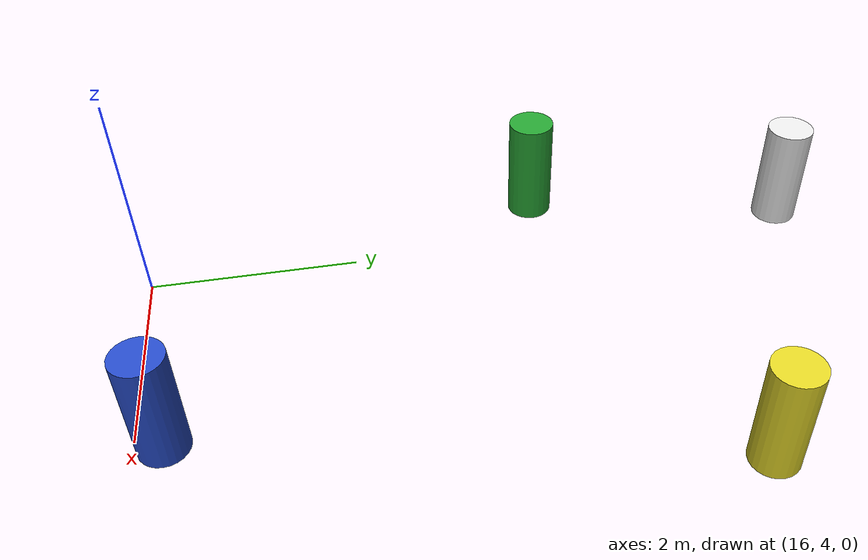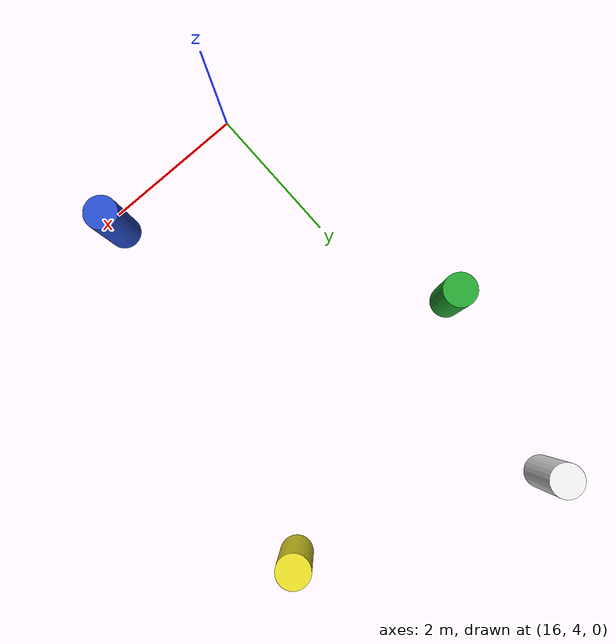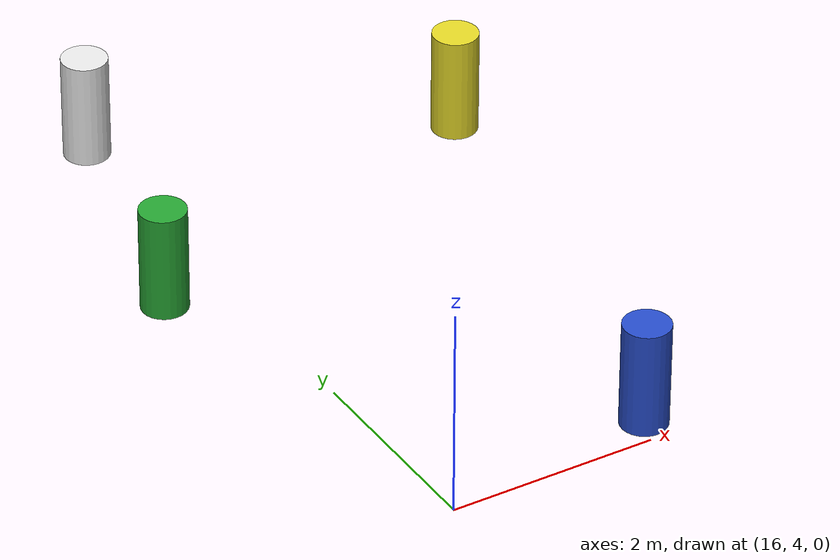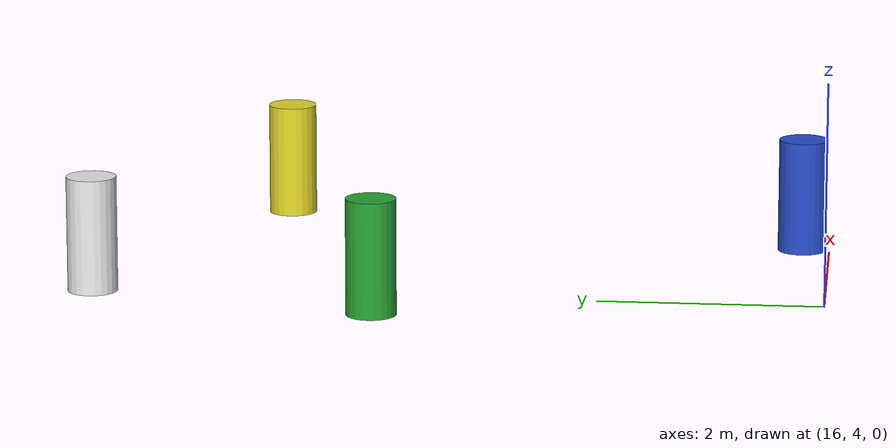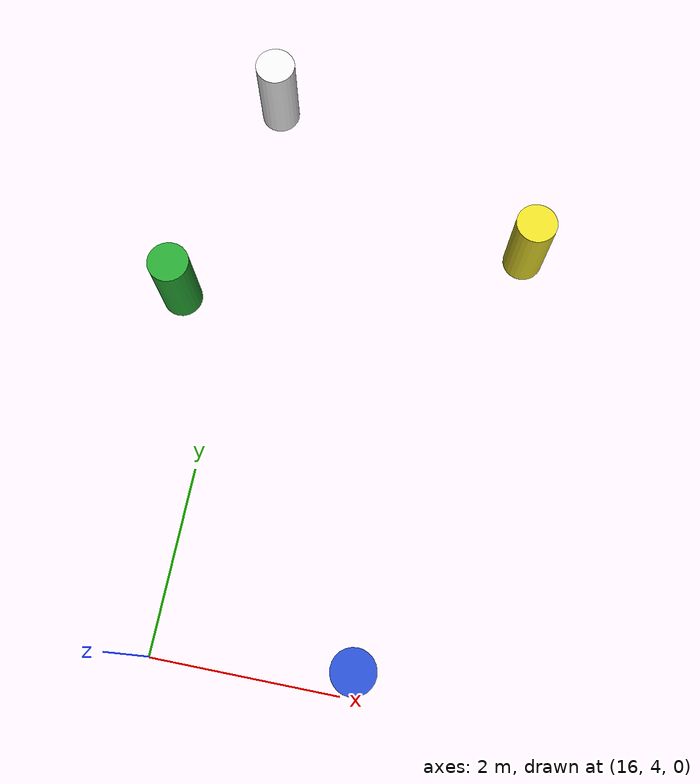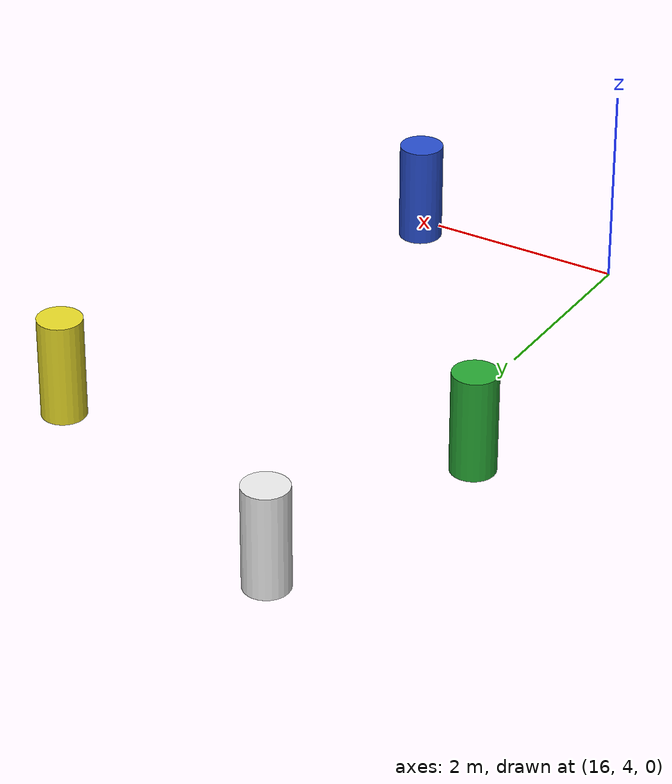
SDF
<sdf version="1.7">
 <world name="IGVC AutoNav">
  <model name="barrel_31">
   <link name="link">
    <inertial>
     <mass>1</mass>
     <inertia><ixx>0.145833</ixx><ixy>0</ixy><ixz>0</ixz><iyy>0.145833</iyy><iyz>0</iyz><izz>0.125</izz></inertia>
    </inertial>
    <visual name="visual">
     <geometry><cylinder><radius>0.222916</radius><length>1.03567</length></cylinder></geometry>
     <material>
      <script><name>Gazebo/Green</name><uri>file://media/materials/scripts/gazebo.material</uri></script>
      <shader type="pixel"/>
     </material>
    </visual>
    <collision name="collision">
     <geometry><cylinder><radius>0.222916</radius><length>1.03567</length></cylinder></geometry>
     <surface>
      <friction>
       <ode><mu>1</mu><mu2>1</mu2><fdir1>0 0 0</fdir1><slip1>0</slip1><slip2>0</slip2></ode>
       <torsional>
        <coefficient>1</coefficient>
        <patch_radius>0</patch_radius>
        <surface_radius>0</surface_radius>
        <use_patch_radius>1</use_patch_radius>
        <ode><slip>0</slip></ode>
       </torsional>
      </friction>
      <bounce><restitution_coefficient>0</restitution_coefficient><threshold>1e+06</threshold></bounce>
      <contact>
       <collide_without_contact>0</collide_without_contact>
       <collide_without_contact_bitmask>1</collide_without_contact_bitmask>
       <collide_bitmask>1</collide_bitmask>
       <ode>
        <soft_cfm>0</soft_cfm>
        <soft_erp>0.2</soft_erp>
        <kp>1e+13</kp>
        <kd>1</kd>
        <max_vel>0.01</max_vel>
        <min_depth>0</min_depth>
       </ode>
       <bullet>
        <split_impulse>1</split_impulse>
        <split_impulse_penetration_threshold>-0.01</split_impulse_penetration_threshold>
        <soft_cfm>0</soft_cfm>
        <soft_erp>0.2</soft_erp>
        <kp>1e+13</kp>
        <kd>1</kd>
       </bullet>
      </contact>
     </surface>
    </collision>
   </link>
   <static>0</static>
   <pose>15.379 7.92408 0.517834 1e-06 1e-06 0.000317</pose>
  </model>
  <model name="barrel_32">
   <link name="link">
    <inertial>
     <mass>1</mass>
     <inertia><ixx>0.145833</ixx><ixy>0</ixy><ixz>0</ixz><iyy>0.145833</iyy><iyz>0</iyz><izz>0.125</izz></inertia>
    </inertial>
    <visual name="visual">
     <geometry><cylinder><radius>0.222916</radius><length>1.03567</length></cylinder></geometry>
     <material>
      <script><name>Gazebo/Yellow</name><uri>file://media/materials/scripts/gazebo.material</uri></script>
      <shader type="pixel"/>
     </material>
    </visual>
    <collision name="collision">
     <geometry><cylinder><radius>0.222916</radius><length>1.03567</length></cylinder></geometry>
     <surface>
      <friction>
       <ode><mu>1</mu><mu2>1</mu2><fdir1>0 0 0</fdir1><slip1>0</slip1><slip2>0</slip2></ode>
       <torsional>
        <coefficient>1</coefficient>
        <patch_radius>0</patch_radius>
        <surface_radius>0</surface_radius>
        <use_patch_radius>1</use_patch_radius>
        <ode><slip>0</slip></ode>
       </torsional>
      </friction>
      <bounce><restitution_coefficient>0</restitution_coefficient><threshold>1e+06</threshold></bounce>
      <contact>
       <collide_without_contact>0</collide_without_contact>
       <collide_without_contact_bitmask>1</collide_without_contact_bitmask>
       <collide_bitmask>1</collide_bitmask>
       <ode>
        <soft_cfm>0</soft_cfm>
        <soft_erp>0.2</soft_erp>
        <kp>1e+13</kp>
        <kd>1</kd>
        <max_vel>0.01</max_vel>
        <min_depth>0</min_depth>
       </ode>
       <bullet>
        <split_impulse>1</split_impulse>
        <split_impulse_penetration_threshold>-0.01</split_impulse_penetration_threshold>
        <soft_cfm>0</soft_cfm>
        <soft_erp>0.2</soft_erp>
        <kp>1e+13</kp>
        <kd>1</kd>
       </bullet>
      </contact>
     </surface>
    </collision>
   </link>
   <static>0</static>
   <pose>19.1435 9.11208 0.517834 1e-06 1e-06 0.000302</pose>
  </model>
  <model name="barrel_34">
   <link name="link">
    <inertial>
     <mass>1</mass>
     <inertia><ixx>0.145833</ixx><ixy>0</ixy><ixz>0</ixz><iyy>0.145833</iyy><iyz>0</iyz><izz>0.125</izz></inertia>
    </inertial>
    <visual name="visual">
     <geometry><cylinder><radius>0.222916</radius><length>1.03567</length></cylinder></geometry>
     <material>
      <script><name>Gazebo/Blue</name><uri>file://media/materials/scripts/gazebo.material</uri></script>
      <shader type="pixel"/>
     </material>
    </visual>
    <collision name="collision">
     <geometry><cylinder><radius>0.222916</radius><length>1.03567</length></cylinder></geometry>
     <surface>
      <friction>
       <ode><mu>1</mu><mu2>1</mu2><fdir1>0 0 0</fdir1><slip1>0</slip1><slip2>0</slip2></ode>
       <torsional>
        <coefficient>1</coefficient>
        <patch_radius>0</patch_radius>
        <surface_radius>0</surface_radius>
        <use_patch_radius>1</use_patch_radius>
        <ode><slip>0</slip></ode>
       </torsional>
      </friction>
      <bounce><restitution_coefficient>0</restitution_coefficient><threshold>1e+06</threshold></bounce>
      <contact>
       <collide_without_contact>0</collide_without_contact>
       <collide_without_contact_bitmask>1</collide_without_contact_bitmask>
       <collide_bitmask>1</collide_bitmask>
       <ode>
        <soft_cfm>0</soft_cfm>
        <soft_erp>0.2</soft_erp>
        <kp>1e+13</kp>
        <kd>1</kd>
        <max_vel>0.01</max_vel>
        <min_depth>0</min_depth>
       </ode>
       <bullet>
        <split_impulse>1</split_impulse>
        <split_impulse_penetration_threshold>-0.01</split_impulse_penetration_threshold>
        <soft_cfm>0</soft_cfm>
        <soft_erp>0.2</soft_erp>
        <kp>1e+13</kp>
        <kd>1</kd>
       </bullet>
      </contact>
     </surface>
    </collision>
   </link>
   <static>0</static>
   <pose>18.0902 4.25222 0.517834 1e-06 1e-06 0.000273</pose>
  </model>
  <model name="barrel_38">
   <link name="link">
    <inertial>
     <mass>1</mass>
     <inertia><ixx>0.145833</ixx><ixy>0</ixy><ixz>0</ixz><iyy>0.145833</iyy><iyz>0</iyz><izz>0.125</izz></inertia>
    </inertial>
    <visual name="visual">
     <geometry><cylinder><radius>0.222916</radius><length>1.03567</length></cylinder></geometry>
     <material>
      <script><name>Gazebo/White</name><uri>file://media/materials/scripts/gazebo.material</uri></script>
      <shader type="pixel"/>
     </material>
    </visual>
    <collision name="collision">
     <geometry><cylinder><radius>0.222916</radius><length>1.03567</length></cylinder></geometry>
     <surface>
      <friction>
       <ode><mu>1</mu><mu2>1</mu2><fdir1>0 0 0</fdir1><slip1>0</slip1><slip2>0</slip2></ode>
       <torsional>
        <coefficient>1</coefficient>
        <patch_radius>0</patch_radius>
        <surface_radius>0</surface_radius>
        <use_patch_radius>1</use_patch_radius>
        <ode><slip>0</slip></ode>
       </torsional>
      </friction>
      <bounce><restitution_coefficient>0</restitution_coefficient><threshold>1e+06</threshold></bounce>
      <contact>
       <collide_without_contact>0</collide_without_contact>
       <collide_without_contact_bitmask>1</collide_without_contact_bitmask>
       <collide_bitmask>1</collide_bitmask>
       <ode>
        <soft_cfm>0</soft_cfm>
        <soft_erp>0.2</soft_erp>
        <kp>1e+13</kp>
        <kd>1</kd>
        <max_vel>0.01</max_vel>
        <min_depth>0</min_depth>
       </ode>
       <bullet>
        <split_impulse>1</split_impulse>
        <split_impulse_penetration_threshold>-0.01</split_impulse_penetration_threshold>
        <soft_cfm>0</soft_cfm>
        <soft_erp>0.2</soft_erp>
        <kp>1e+13</kp>
        <kd>1</kd>
       </bullet>
      </contact>
     </surface>
    </collision>
   </link>
   <static>0</static>
   <pose>15.9753 10.4826 0.517834 1e-06 1e-06 0.00033</pose>
  </model>
 </world>
</sdf>
